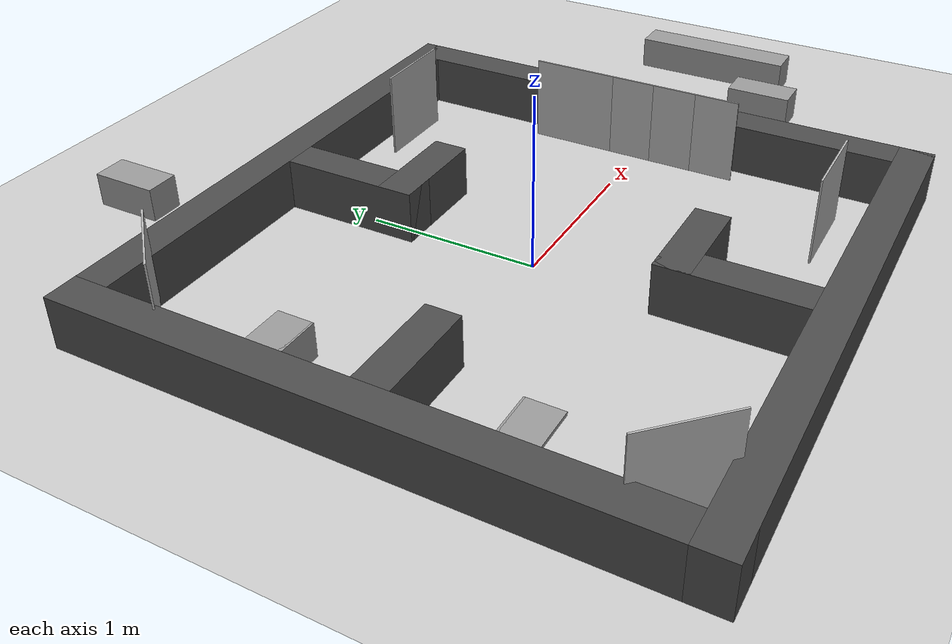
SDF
<sdf version="1.6">
 <world name="default">
  <light name="sun" type="directional">
   <pose>0 0 10 0 -0 0</pose>
   <diffuse>0.8 0.8 0.8 1</diffuse>
   <specular>0.1 0.1 0.1 1</specular>
   <attenuation>
    <range>1000</range>
    <constant>0.9</constant>
    <linear>0.01</linear>
    <quadratic>0.001</quadratic>
   </attenuation>
   <direction>-0.5 0.5 -1</direction>
  </light>
  <model name="ground_plane">
   <static>1</static>
   <link name="link">
    <collision name="collision">
     <geometry><plane><normal>0 0 1</normal><size>100 100</size></plane></geometry>
     <surface><friction><ode><mu>100</mu><mu2>50</mu2></ode></friction></surface>
    </collision>
    <visual name="visual">
     <cast_shadows>0</cast_shadows>
     <geometry><plane><normal>0 0 1</normal><size>100 100</size></plane></geometry>
     <material>
      <script><uri>file://media/materials/scripts/gazebo.material</uri><name>Gazebo/Grey</name></script>
     </material>
    </visual>
   </link>
  </model>
  <gravity>0 0 -9.8</gravity>
  <magnetic_field>6e-06 2.3e-05 -4.2e-05</magnetic_field>
  <atmosphere type="adiabatic"/>
  <physics name="default_physics" default="0" type="ode">
   <max_step_size>0.001</max_step_size>
   <real_time_factor>1</real_time_factor>
   <real_time_update_rate>1000</real_time_update_rate>
  </physics>
  <scene><ambient>0.4 0.4 0.4 1</ambient><background>0.7 0.7 0.7 1</background><shadows>false</shadows></scene>
  <spherical_coordinates>
   <surface_model>EARTH_WGS84</surface_model>
   <latitude_deg>0</latitude_deg>
   <longitude_deg>0</longitude_deg>
   <elevation>0</elevation>
   <heading_deg>0</heading_deg>
  </spherical_coordinates>
  <model name="competition_room_final">
   <link name="Wall_13">
    <collision name="Wall_13_Collision">
     <geometry><box><size>3.4 0.2 0.3</size></box></geometry>
     <pose>0 0 0.15 0 -0 0</pose>
    </collision>
    <visual name="Wall_13_Visual">
     <pose>0 0 0.15 0 -0 0</pose>
     <geometry><box><size>3.4 0.2 0.3</size></box></geometry>
     <material>
      <script><uri>file://media/materials/scripts/gazebo.material</uri><name>Gazebo/DarkGrey</name></script>
      <ambient>0 0 0 1</ambient>
     </material>
    </visual>
    <pose>1.6 0 0 0 0 -1.5708</pose>
   </link>
   <link name="Wall_14">
    <collision name="Wall_14_Collision">
     <geometry><box><size>3.4 0.2 0.3</size></box></geometry>
     <pose>0 0 0.15 0 -0 0</pose>
    </collision>
    <visual name="Wall_14_Visual">
     <pose>0 0 0.15 0 -0 0</pose>
     <geometry><box><size>3.4 0.2 0.3</size></box></geometry>
     <material>
      <script><uri>file://media/materials/scripts/gazebo.material</uri><name>Gazebo/DarkGrey</name></script>
      <ambient>0 0 0 1</ambient>
     </material>
    </visual>
    <pose>0 -1.6 0 0 -0 3.14159</pose>
   </link>
   <link name="Wall_15">
    <collision name="Wall_15_Collision">
     <geometry><box><size>3.4 0.2 0.3</size></box></geometry>
     <pose>0 0 0.15 0 -0 0</pose>
    </collision>
    <visual name="Wall_15_Visual">
     <pose>0 0 0.15 0 -0 0</pose>
     <geometry><box><size>3.4 0.2 0.3</size></box></geometry>
     <material>
      <script><uri>file://media/materials/scripts/gazebo.material</uri><name>Gazebo/DarkGrey</name></script>
      <ambient>0 0 0 1</ambient>
     </material>
    </visual>
    <pose>-1.6 0 0 0 -0 1.5708</pose>
   </link>
   <link name="Wall_16">
    <collision name="Wall_16_Collision">
     <geometry><box><size>3.4 0.2 0.3</size></box></geometry>
     <pose>0 0 0.15 0 -0 0</pose>
    </collision>
    <visual name="Wall_16_Visual">
     <pose>0 0 0.15 0 -0 0</pose>
     <geometry><box><size>3.4 0.2 0.3</size></box></geometry>
     <material>
      <script><uri>file://media/materials/scripts/gazebo.material</uri><name>Gazebo/DarkGrey</name></script>
      <ambient>0 0 0 1</ambient>
     </material>
    </visual>
    <pose>0 1.6 0 0 -0 0</pose>
   </link>
   <link name="Wall_20">
    <collision name="Wall_20_Collision">
     <geometry><box><size>0.8 0.2 0.3</size></box></geometry>
     <pose>0 0 0.15 0 -0 0</pose>
    </collision>
    <visual name="Wall_20_Visual">
     <pose>0 0 0.15 0 -0 0</pose>
     <geometry><box><size>0.8 0.2 0.3</size></box></geometry>
     <material>
      <script><uri>file://media/materials/scripts/gazebo.material</uri><name>Gazebo/DarkGrey</name></script>
      <ambient>0 0 0 1</ambient>
     </material>
    </visual>
    <pose>0 1.1 0 0 0 -1.5708</pose>
   </link>
   <link name="Wall_21">
    <collision name="Wall_21_Collision">
     <geometry><box><size>0.6 0.2 0.3</size></box></geometry>
     <pose>0 0 0.15 0 -0 0</pose>
    </collision>
    <visual name="Wall_21_Visual">
     <pose>0 0 0.15 0 -0 0</pose>
     <geometry><box><size>0.6 0.2 0.3</size></box></geometry>
     <material>
      <script><uri>file://media/materials/scripts/gazebo.material</uri><name>Gazebo/DarkGrey</name></script>
      <ambient>0 0 0 1</ambient>
     </material>
    </visual>
    <pose>0.2 0.8 0 0 -0 0</pose>
   </link>
   <link name="Wall_23">
    <collision name="Wall_23_Collision">
     <geometry><box><size>0.8 0.2 0.3</size></box></geometry>
     <pose>0 0 0.15 0 -0 0</pose>
    </collision>
    <visual name="Wall_23_Visual">
     <pose>0 0 0.15 0 -0 0</pose>
     <geometry><box><size>0.8 0.2 0.3</size></box></geometry>
     <material>
      <script><uri>file://media/materials/scripts/gazebo.material</uri><name>Gazebo/DarkGrey</name></script>
      <ambient>0 0 0 1</ambient>
     </material>
    </visual>
    <pose>0 -1.1 0 0 -0 1.5708</pose>
   </link>
   <link name="Wall_24">
    <collision name="Wall_24_Collision">
     <geometry><box><size>0.6 0.2 0.3</size></box></geometry>
     <pose>0 0 0.15 0 -0 0</pose>
    </collision>
    <visual name="Wall_24_Visual">
     <pose>0 0 0.15 0 -0 0</pose>
     <geometry><box><size>0.6 0.2 0.3</size></box></geometry>
     <material>
      <script><uri>file://media/materials/scripts/gazebo.material</uri><name>Gazebo/DarkGrey</name></script>
      <ambient>0 0 0 1</ambient>
     </material>
    </visual>
    <pose>0.2 -0.8 0 0 -0 0</pose>
   </link>
   <link name="Wall_26">
    <collision name="Wall_26_Collision">
     <geometry><box><size>0.6 0.2 0.3</size></box></geometry>
     <pose>0 0 0.15 0 -0 0</pose>
    </collision>
    <visual name="Wall_26_Visual">
     <pose>0 0 0.15 0 -0 0</pose>
     <geometry><box><size>0.6 0.2 0.3</size></box></geometry>
     <material>
      <script><uri>file://media/materials/scripts/gazebo.material</uri><name>Gazebo/DarkGrey</name></script>
      <ambient>0 0 0 1</ambient>
     </material>
    </visual>
    <pose>-1.2 0 0 0 -0 0</pose>
   </link>
   <static>1</static>
  </model>
  <model name="object_stand">
   <pose>1.4 0 0 0 0 0</pose>
   <link name="link">
    <pose>1.4 0 0.1 0 0 0</pose>
    <inertial>
     <mass>1</mass>
     <inertia>
      <ixx>0.166667</ixx>
      <ixy>0</ixy>
      <ixz>0</ixz>
      <iyy>0.166667</iyy>
      <iyz>0</iyz>
      <izz>0.166667</izz>
     </inertia>
    </inertial>
    <kinematic>1</kinematic>
    <visual name="visual">
     <geometry><box><size>0.2 1 0.2</size></box></geometry>
     <material>
      <script><name>Gazebo/Grey</name><uri>file://media/materials/scripts/gazebo.material</uri></script>
      <ambient>0.3 0.3 0.3 1</ambient>
      <diffuse>0.7 0.7 0.7 1</diffuse>
      <specular>0.01 0.01 0.01 1</specular>
      <emissive>0 0 0 1</emissive>
      <shader type="vertex"><normal_map>__default__</normal_map></shader>
     </material>
    </visual>
    <collision name="collision">
     <geometry><box><size>0.2 1 0.2</size></box></geometry>
     <surface>
      <friction>
       <ode><mu>1</mu><mu2>1</mu2><fdir1>0 0 0</fdir1><slip1>0</slip1><slip2>0</slip2></ode>
       <torsional>
        <coefficient>1</coefficient>
        <patch_radius>0</patch_radius>
        <surface_radius>0</surface_radius>
        <use_patch_radius>1</use_patch_radius>
        <ode><slip>0</slip></ode>
       </torsional>
      </friction>
      <bounce><restitution_coefficient>0</restitution_coefficient><threshold>1e+06</threshold></bounce>
      <contact>
       <collide_without_contact>0</collide_without_contact>
       <collide_without_contact_bitmask>1</collide_without_contact_bitmask>
       <collide_bitmask>1</collide_bitmask>
       <ode>
        <soft_cfm>0</soft_cfm>
        <soft_erp>0.2</soft_erp>
        <kp>1e+13</kp>
        <kd>1</kd>
        <max_vel>0.01</max_vel>
        <min_depth>0</min_depth>
       </ode>
       <bullet>
        <split_impulse>1</split_impulse>
        <split_impulse_penetration_threshold>-0.01</split_impulse_penetration_threshold>
        <soft_cfm>0</soft_cfm>
        <soft_erp>0.2</soft_erp>
        <kp>1e+13</kp>
        <kd>1</kd>
       </bullet>
      </contact>
     </surface>
    </collision>
   </link>
   <static>0</static>
  </model>
  <model name="unit_stand_1">
   <pose>0.9 1.4 0 0 -0 1.5708</pose>
   <link name="link">
    <pose>0.9 1.4 0.1 0 -0 1.5708</pose>
    <inertial>
     <mass>1</mass>
     <inertia>
      <ixx>0.166667</ixx>
      <ixy>0</ixy>
      <ixz>0</ixz>
      <iyy>0.166667</iyy>
      <iyz>0</iyz>
      <izz>0.166667</izz>
     </inertia>
    </inertial>
    <kinematic>1</kinematic>
    <visual name="visual">
     <geometry><box><size>0.2 0.4 0.2</size></box></geometry>
     <material>
      <script><name>Gazebo/Grey</name><uri>file://media/materials/scripts/gazebo.material</uri></script>
      <ambient>0.3 0.3 0.3 1</ambient>
      <diffuse>0.7 0.7 0.7 1</diffuse>
      <specular>0.01 0.01 0.01 1</specular>
      <emissive>0 0 0 1</emissive>
      <shader type="vertex"><normal_map>__default__</normal_map></shader>
     </material>
    </visual>
    <collision name="collision">
     <geometry><box><size>0.2 0.4 0.2</size></box></geometry>
     <surface>
      <friction>
       <ode><mu>1</mu><mu2>1</mu2><fdir1>0 0 0</fdir1><slip1>0</slip1><slip2>0</slip2></ode>
       <torsional>
        <coefficient>1</coefficient>
        <patch_radius>0</patch_radius>
        <surface_radius>0</surface_radius>
        <use_patch_radius>1</use_patch_radius>
        <ode><slip>0</slip></ode>
       </torsional>
      </friction>
      <bounce><restitution_coefficient>0</restitution_coefficient><threshold>1e+06</threshold></bounce>
      <contact>
       <collide_without_contact>0</collide_without_contact>
       <collide_without_contact_bitmask>1</collide_without_contact_bitmask>
       <collide_bitmask>1</collide_bitmask>
       <ode>
        <soft_cfm>0</soft_cfm>
        <soft_erp>0.2</soft_erp>
        <kp>1e+13</kp>
        <kd>1</kd>
        <max_vel>0.01</max_vel>
        <min_depth>0</min_depth>
       </ode>
       <bullet>
        <split_impulse>1</split_impulse>
        <split_impulse_penetration_threshold>-0.01</split_impulse_penetration_threshold>
        <soft_cfm>0</soft_cfm>
        <soft_erp>0.2</soft_erp>
        <kp>1e+13</kp>
        <kd>1</kd>
       </bullet>
      </contact>
     </surface>
    </collision>
   </link>
   <static>0</static>
  </model>
  <model name="unit_stand_1_1">
   <pose>0.9 -1.4 0 0 -0 1.5708</pose>
   <link name="link">
    <pose>0.9 -1.4 0.1 0 -0 1.5708</pose>
    <inertial>
     <mass>1</mass>
     <inertia>
      <ixx>0.166667</ixx>
      <ixy>0</ixy>
      <ixz>0</ixz>
      <iyy>0.166667</iyy>
      <iyz>0</iyz>
      <izz>0.166667</izz>
     </inertia>
    </inertial>
    <kinematic>1</kinematic>
    <visual name="visual">
     <geometry><box><size>0.2 0.4 0.2</size></box></geometry>
     <material>
      <script><name>Gazebo/Grey</name><uri>file://media/materials/scripts/gazebo.material</uri></script>
      <ambient>0.3 0.3 0.3 1</ambient>
      <diffuse>0.7 0.7 0.7 1</diffuse>
      <specular>0.01 0.01 0.01 1</specular>
      <emissive>0 0 0 1</emissive>
      <shader type="vertex"><normal_map>__default__</normal_map></shader>
     </material>
    </visual>
    <collision name="collision">
     <geometry><box><size>0.2 0.4 0.2</size></box></geometry>
     <surface>
      <friction>
       <ode><mu>1</mu><mu2>1</mu2><fdir1>0 0 0</fdir1><slip1>0</slip1><slip2>0</slip2></ode>
       <torsional>
        <coefficient>1</coefficient>
        <patch_radius>0</patch_radius>
        <surface_radius>0</surface_radius>
        <use_patch_radius>1</use_patch_radius>
        <ode><slip>0</slip></ode>
       </torsional>
      </friction>
      <bounce><restitution_coefficient>0</restitution_coefficient><threshold>1e+06</threshold></bounce>
      <contact>
       <collide_without_contact>0</collide_without_contact>
       <collide_without_contact_bitmask>1</collide_without_contact_bitmask>
       <collide_bitmask>1</collide_bitmask>
       <ode>
        <soft_cfm>0</soft_cfm>
        <soft_erp>0.2</soft_erp>
        <kp>1e+13</kp>
        <kd>1</kd>
        <max_vel>0.01</max_vel>
        <min_depth>0</min_depth>
       </ode>
       <bullet>
        <split_impulse>1</split_impulse>
        <split_impulse_penetration_threshold>-0.01</split_impulse_penetration_threshold>
        <soft_cfm>0</soft_cfm>
        <soft_erp>0.2</soft_erp>
        <kp>1e+13</kp>
        <kd>1</kd>
       </bullet>
      </contact>
     </surface>
    </collision>
   </link>
   <static>0</static>
  </model>
  <model name="unit_stand_2">
   <pose>-1.36 1.36 0 0 -0 2.35619</pose>
   <link name="link">
    <pose>-1.36 1.36 0.1 0 -0 2.35619</pose>
    <inertial>
     <mass>1</mass>
     <inertia>
      <ixx>0.166667</ixx>
      <ixy>0</ixy>
      <ixz>0</ixz>
      <iyy>0.166667</iyy>
      <iyz>0</iyz>
      <izz>0.166667</izz>
     </inertia>
    </inertial>
    <kinematic>1</kinematic>
    <visual name="visual_1">
     <geometry><box><size>0.2 0.4 0.02</size></box></geometry>
     <material>
      <script><name>Gazebo/Grey</name><uri>file://media/materials/scripts/gazebo.material</uri></script>
      <ambient>0.3 0.3 0.3 1</ambient>
      <diffuse>0.7 0.7 0.7 1</diffuse>
      <specular>0.01 0.01 0.01 1</specular>
      <emissive>0 0 0 1</emissive>
      <shader type="vertex"><normal_map>__default__</normal_map></shader>
     </material>
     <pose>0.1 0 0.09 0 -0 0</pose>
    </visual>
    <visual name="visual">
     <geometry><box><size>0.02 0.4 0.2</size></box></geometry>
     <material>
      <script><name>Gazebo/Grey</name><uri>file://media/materials/scripts/gazebo.material</uri></script>
      <ambient>0.3 0.3 0.3 1</ambient>
      <diffuse>0.7 0.7 0.7 1</diffuse>
      <specular>0.01 0.01 0.01 1</specular>
      <emissive>0 0 0 1</emissive>
      <shader type="vertex"><normal_map>__default__</normal_map></shader>
     </material>
    </visual>
    <collision name="collision_1">
     <pose>0.1 0 0.09 0 -0 0</pose>
     <geometry><box><size>0.2 0.4 0.02</size></box></geometry>
     <surface>
      <friction>
       <ode><mu>1</mu><mu2>1</mu2><fdir1>0 0 0</fdir1><slip1>0</slip1><slip2>0</slip2></ode>
       <torsional>
        <coefficient>1</coefficient>
        <patch_radius>0</patch_radius>
        <surface_radius>0</surface_radius>
        <use_patch_radius>1</use_patch_radius>
        <ode><slip>0</slip></ode>
       </torsional>
      </friction>
      <bounce><restitution_coefficient>0</restitution_coefficient><threshold>1e+06</threshold></bounce>
      <contact>
       <collide_without_contact>0</collide_without_contact>
       <collide_without_contact_bitmask>1</collide_without_contact_bitmask>
       <collide_bitmask>1</collide_bitmask>
       <ode>
        <soft_cfm>0</soft_cfm>
        <soft_erp>0.2</soft_erp>
        <kp>1e+13</kp>
        <kd>1</kd>
        <max_vel>0.01</max_vel>
        <min_depth>0</min_depth>
       </ode>
       <bullet>
        <split_impulse>1</split_impulse>
        <split_impulse_penetration_threshold>-0.01</split_impulse_penetration_threshold>
        <soft_cfm>0</soft_cfm>
        <soft_erp>0.2</soft_erp>
        <kp>1e+13</kp>
        <kd>1</kd>
       </bullet>
      </contact>
     </surface>
    </collision>
    <collision name="collision">
     <geometry><box><size>0.02 0.4 0.2</size></box></geometry>
     <surface>
      <friction>
       <ode><mu>1</mu><mu2>1</mu2><fdir1>0 0 0</fdir1><slip1>0</slip1><slip2>0</slip2></ode>
       <torsional>
        <coefficient>1</coefficient>
        <patch_radius>0</patch_radius>
        <surface_radius>0</surface_radius>
        <use_patch_radius>1</use_patch_radius>
        <ode><slip>0</slip></ode>
       </torsional>
      </friction>
      <bounce><restitution_coefficient>0</restitution_coefficient><threshold>1e+06</threshold></bounce>
      <contact>
       <collide_without_contact>0</collide_without_contact>
       <collide_without_contact_bitmask>1</collide_without_contact_bitmask>
       <collide_bitmask>1</collide_bitmask>
       <ode>
        <soft_cfm>0</soft_cfm>
        <soft_erp>0.2</soft_erp>
        <kp>1e+13</kp>
        <kd>1</kd>
        <max_vel>0.01</max_vel>
        <min_depth>0</min_depth>
       </ode>
       <bullet>
        <split_impulse>1</split_impulse>
        <split_impulse_penetration_threshold>-0.01</split_impulse_penetration_threshold>
        <soft_cfm>0</soft_cfm>
        <soft_erp>0.2</soft_erp>
        <kp>1e+13</kp>
        <kd>1</kd>
       </bullet>
      </contact>
     </surface>
    </collision>
   </link>
   <static>0</static>
  </model>
  <model name="unit_stand_2_1">
   <pose>-1.36 -1.36 0 0 0 -2.35619</pose>
   <link name="link">
    <pose>-1.36 -1.36 0.1 0 0 -2.35619</pose>
    <inertial>
     <mass>1</mass>
     <inertia>
      <ixx>0.166667</ixx>
      <ixy>0</ixy>
      <ixz>0</ixz>
      <iyy>0.166667</iyy>
      <iyz>0</iyz>
      <izz>0.166667</izz>
     </inertia>
    </inertial>
    <kinematic>1</kinematic>
    <visual name="visual_1">
     <geometry><box><size>0.2 0.4 0.02</size></box></geometry>
     <material>
      <script><name>Gazebo/Grey</name><uri>file://media/materials/scripts/gazebo.material</uri></script>
      <ambient>0.3 0.3 0.3 1</ambient>
      <diffuse>0.7 0.7 0.7 1</diffuse>
      <specular>0.01 0.01 0.01 1</specular>
      <emissive>0 0 0 1</emissive>
      <shader type="vertex"><normal_map>__default__</normal_map></shader>
     </material>
     <pose>0.1 0 0.09 0 -0 0</pose>
    </visual>
    <visual name="visual">
     <geometry><box><size>0.02 0.4 0.2</size></box></geometry>
     <material>
      <script><name>Gazebo/Grey</name><uri>file://media/materials/scripts/gazebo.material</uri></script>
      <ambient>0.3 0.3 0.3 1</ambient>
      <diffuse>0.7 0.7 0.7 1</diffuse>
      <specular>0.01 0.01 0.01 1</specular>
      <emissive>0 0 0 1</emissive>
      <shader type="vertex"><normal_map>__default__</normal_map></shader>
     </material>
    </visual>
    <collision name="collision_1">
     <pose>0.1 0 0.09 0 -0 0</pose>
     <geometry><box><size>0.2 0.4 0.02</size></box></geometry>
     <surface>
      <friction>
       <ode><mu>1</mu><mu2>1</mu2><fdir1>0 0 0</fdir1><slip1>0</slip1><slip2>0</slip2></ode>
       <torsional>
        <coefficient>1</coefficient>
        <patch_radius>0</patch_radius>
        <surface_radius>0</surface_radius>
        <use_patch_radius>1</use_patch_radius>
        <ode><slip>0</slip></ode>
       </torsional>
      </friction>
      <bounce><restitution_coefficient>0</restitution_coefficient><threshold>1e+06</threshold></bounce>
      <contact>
       <collide_without_contact>0</collide_without_contact>
       <collide_without_contact_bitmask>1</collide_without_contact_bitmask>
       <collide_bitmask>1</collide_bitmask>
       <ode>
        <soft_cfm>0</soft_cfm>
        <soft_erp>0.2</soft_erp>
        <kp>1e+13</kp>
        <kd>1</kd>
        <max_vel>0.01</max_vel>
        <min_depth>0</min_depth>
       </ode>
       <bullet>
        <split_impulse>1</split_impulse>
        <split_impulse_penetration_threshold>-0.01</split_impulse_penetration_threshold>
        <soft_cfm>0</soft_cfm>
        <soft_erp>0.2</soft_erp>
        <kp>1e+13</kp>
        <kd>1</kd>
       </bullet>
      </contact>
     </surface>
    </collision>
    <collision name="collision">
     <geometry><box><size>0.02 0.4 0.2</size></box></geometry>
     <surface>
      <friction>
       <ode><mu>1</mu><mu2>1</mu2><fdir1>0 0 0</fdir1><slip1>0</slip1><slip2>0</slip2></ode>
       <torsional>
        <coefficient>1</coefficient>
        <patch_radius>0</patch_radius>
        <surface_radius>0</surface_radius>
        <use_patch_radius>1</use_patch_radius>
        <ode><slip>0</slip></ode>
       </torsional>
      </friction>
      <bounce><restitution_coefficient>0</restitution_coefficient><threshold>1e+06</threshold></bounce>
      <contact>
       <collide_without_contact>0</collide_without_contact>
       <collide_without_contact_bitmask>1</collide_without_contact_bitmask>
       <collide_bitmask>1</collide_bitmask>
       <ode>
        <soft_cfm>0</soft_cfm>
        <soft_erp>0.2</soft_erp>
        <kp>1e+13</kp>
        <kd>1</kd>
        <max_vel>0.01</max_vel>
        <min_depth>0</min_depth>
       </ode>
       <bullet>
        <split_impulse>1</split_impulse>
        <split_impulse_penetration_threshold>-0.01</split_impulse_penetration_threshold>
        <soft_cfm>0</soft_cfm>
        <soft_erp>0.2</soft_erp>
        <kp>1e+13</kp>
        <kd>1</kd>
       </bullet>
      </contact>
     </surface>
    </collision>
   </link>
   <static>0</static>
  </model>
  <model name="Marker0">
   <static>1</static>
   <link name="link">
    <visual name="visual">
     <geometry>
      <mesh>
       <uri>model://turtlebot3_home_service_challenge/marker0/meshes/Marker0.dae</uri>
       <scale>1 1 1</scale>
      </mesh>
     </geometry>
    </visual>
   </link>
   <pose>1.29912 0.39 0.05 0 -0 3.14159</pose>
  </model>
  <model name="Marker1">
   <static>1</static>
   <link name="link">
    <visual name="visual">
     <geometry>
      <mesh>
       <uri>model://turtlebot3_home_service_challenge/marker1/meshes/Marker1.dae</uri>
       <scale>1 1 1</scale>
      </mesh>
     </geometry>
    </visual>
   </link>
   <pose>1.29912 0.13 0.05 0 -0 3.14159</pose>
  </model>
  <model name="Marker2">
   <static>1</static>
   <link name="link">
    <visual name="visual">
     <geometry>
      <mesh>
       <uri>model://turtlebot3_home_service_challenge/marker2/meshes/Marker2.dae</uri>
       <scale>1 1 1</scale>
      </mesh>
     </geometry>
    </visual>
   </link>
   <pose>1.29912 -0.13 0.05 0 -0 3.14159</pose>
  </model>
  <model name="Marker3">
   <static>1</static>
   <link name="link">
    <visual name="visual">
     <geometry>
      <mesh>
       <uri>model://turtlebot3_home_service_challenge/marker3/meshes/Marker3.dae</uri>
       <scale>1 1 1</scale>
      </mesh>
     </geometry>
    </visual>
   </link>
   <pose>1.29912 -0.39 0.05 0 -0 3.14159</pose>
  </model>
  <model name="Marker4">
   <static>1</static>
   <link name="link">
    <visual name="visual">
     <geometry>
      <mesh>
       <uri>model://turtlebot3_home_service_challenge/marker4/meshes/Marker4.dae</uri>
       <scale>1 1 1</scale>
      </mesh>
     </geometry>
    </visual>
   </link>
   <pose>0.9 1.29912 0.05 0 0 -1.5708</pose>
  </model>
  <model name="Marker7">
   <static>1</static>
   <link name="link">
    <visual name="visual">
     <geometry>
      <mesh>
       <uri>model://turtlebot3_home_service_challenge/marker7/meshes/Marker7.dae</uri>
       <scale>1 1 1</scale>
      </mesh>
     </geometry>
    </visual>
   </link>
   <pose>0.9 -1.29912 0.05 0 -0 1.5708</pose>
  </model>
  <model name="Marker6">
   <static>1</static>
   <link name="link">
    <visual name="visual">
     <geometry>
      <mesh>
       <uri>model://turtlebot3_home_service_challenge/marker6/meshes/Marker6.dae</uri>
       <scale>1 1 1</scale>
      </mesh>
     </geometry>
    </visual>
   </link>
   <pose>-1.35231 -1.35231 0.05 0 -0 0.785398</pose>
  </model>
  <model name="Marker5">
   <static>1</static>
   <link name="link">
    <visual name="visual">
     <geometry>
      <mesh>
       <uri>model://turtlebot3_home_service_challenge/marker5/meshes/Marker5.dae</uri>
       <scale>1 1 1</scale>
      </mesh>
     </geometry>
    </visual>
   </link>
   <pose>-1.35231 1.35231 0.05 0 0 -0.785398</pose>
  </model>
 </world>
</sdf>
